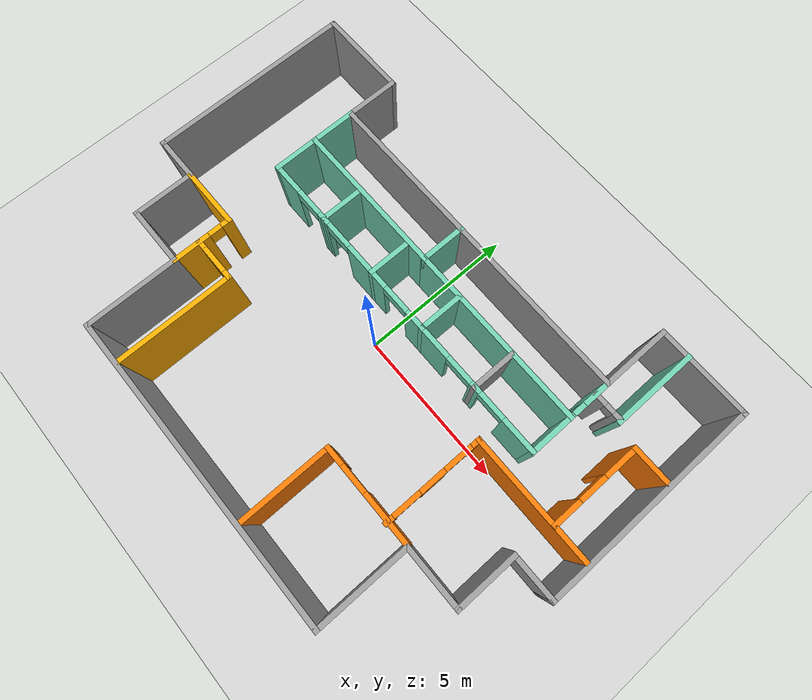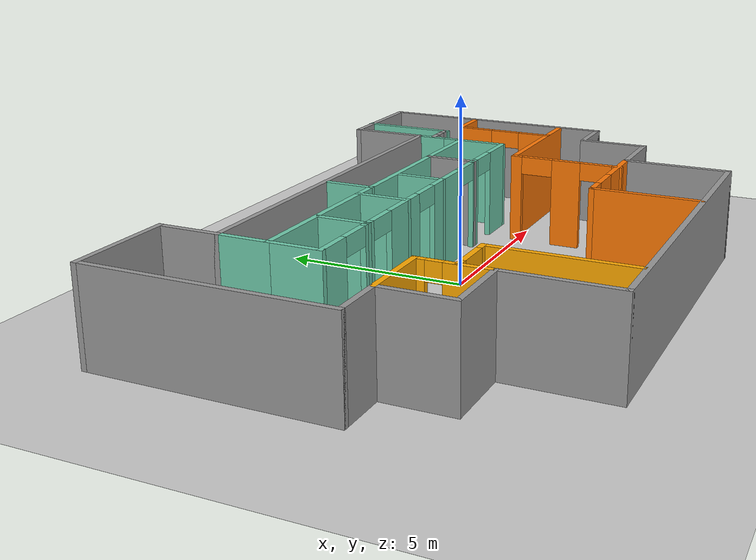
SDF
<?xml version="1.0"?>
<sdf version="1.6">
  <world name="my_world">
  <gravity>0 0 -9.8</gravity>
  <model name="ground_plane">
    <static>1</static>
    <link name="link">
        <collision name="collision">
            <geometry>
                <plane>
                    <normal>0 0 1</normal>
                    <size>100 100</size>
                </plane>
            </geometry>
            <surface>
                <contact>
                    <collide_bitmask>65535</collide_bitmask>
                </contact>
                <friction>
                    <ode>
                        <mu>100</mu>
                        <mu2>50</mu2>
                    </ode>
                </friction>
                <bounce/>
            </surface>
            <max_contacts>10</max_contacts>
        </collision>
        <visual name="visual">
            <cast_shadows>0</cast_shadows>
            <geometry>
                <plane>
                    <normal>0 0 1</normal>
                    <size>100 100</size>
                </plane>
            </geometry>
        </visual>
        <self_collide>0</self_collide>
        <enable_wind>0</enable_wind>
        <kinematic>0</kinematic>
    </link>
</model>
    <include>
      <uri>model://sun</uri>
    </include>
    <include>
      <uri>model://floor_plan</uri>
      <pose>0 0 0 0 0 0</pose>
    </include>
    <gui fullscreen='0'>
      <camera name='user_camera'>
        <pose frame=''>0 -0.5 12.0 0 1.25 1.5666</pose>
        <view_controller>orbit</view_controller>
        <projection_type>perspective</projection_type>
      </camera>
    </gui>
  </world>
</sdf>
